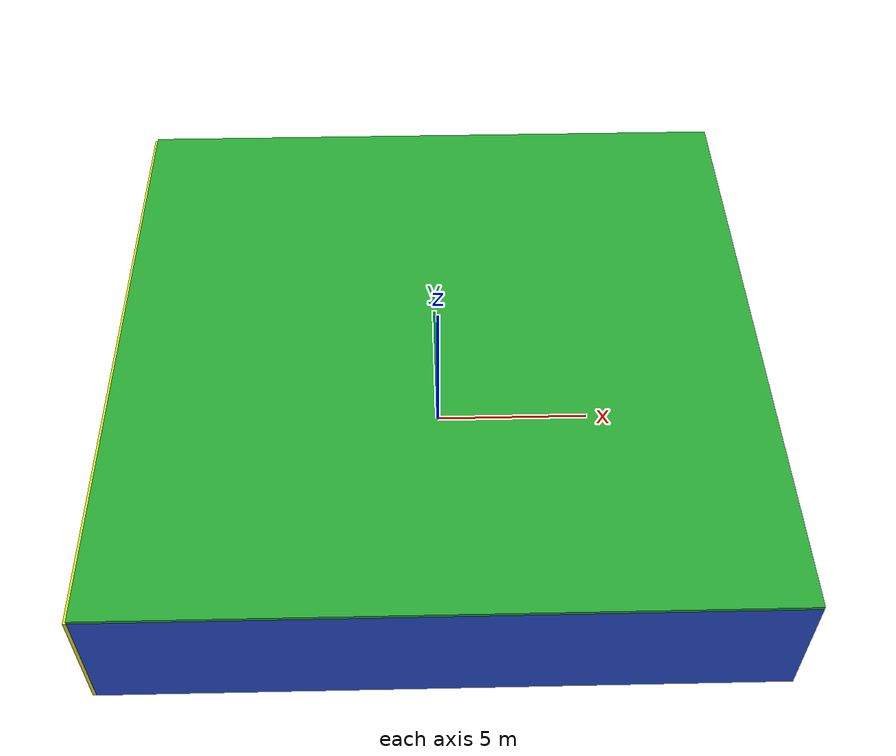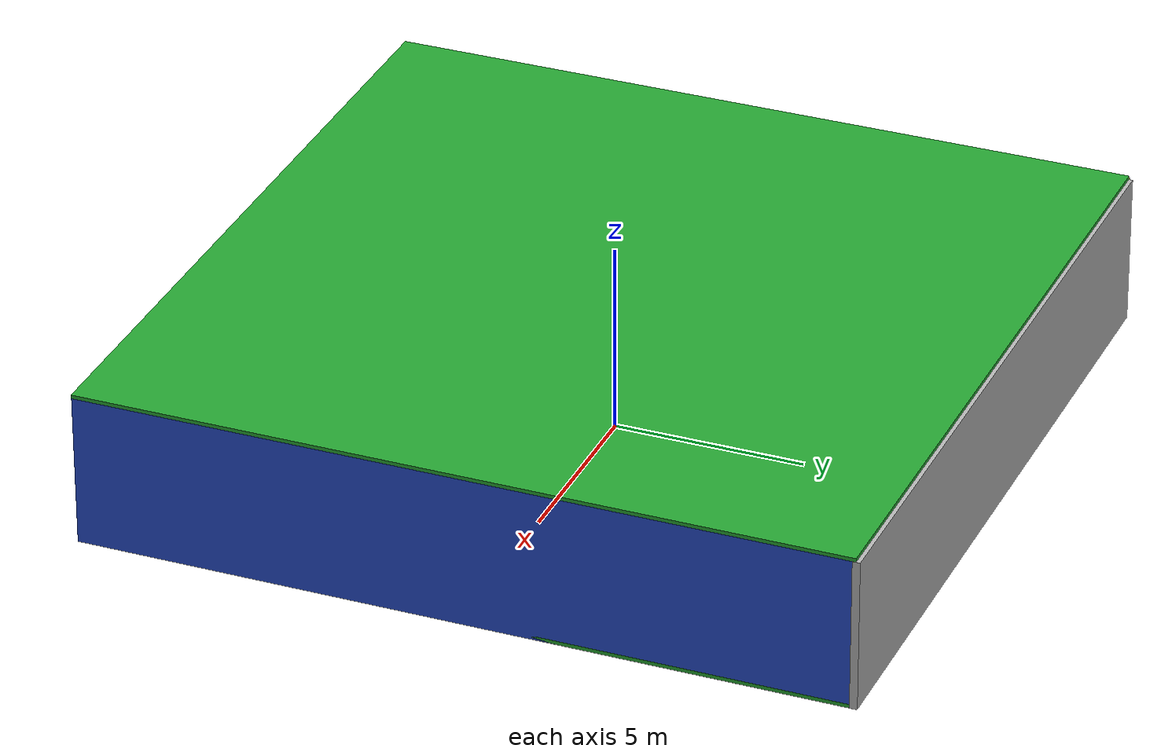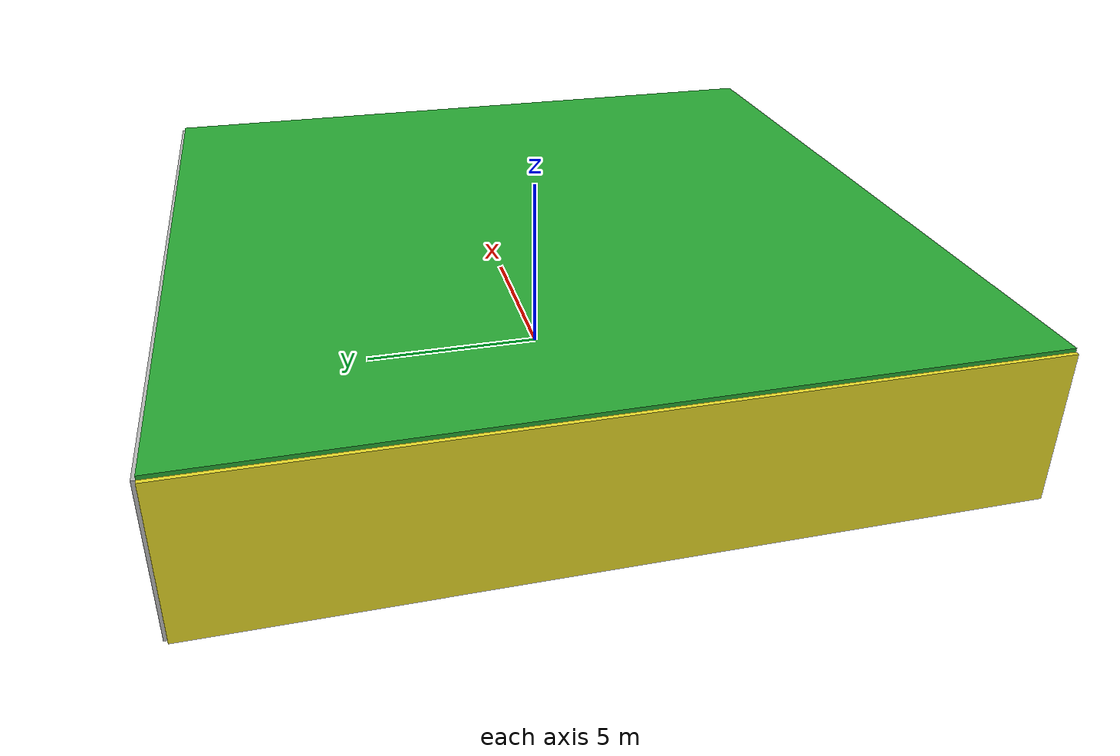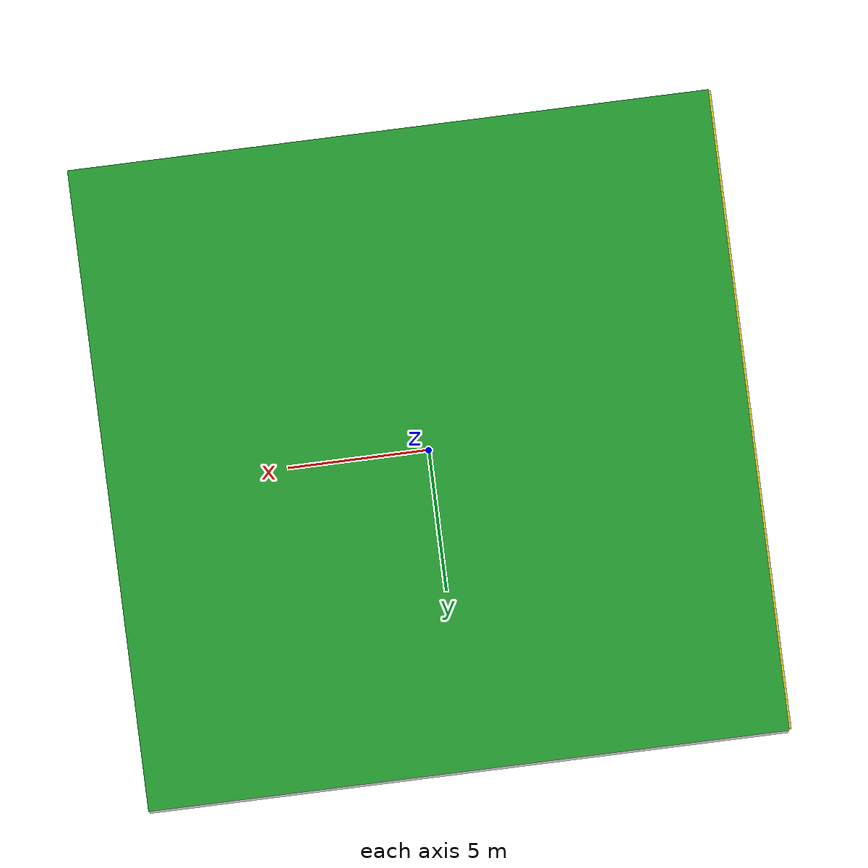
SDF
<sdf version="1.4">
 <world name="default">
  <physics type="ode">
   <max_step_size>0.001</max_step_size>
   <real_time_factor>1</real_time_factor>
   <real_time_update_rate>1000</real_time_update_rate>
   <gravity>0 0 -9.8</gravity>
  </physics>
  <scene><ambient>0.4 0.4 0.4 1</ambient><background>0.7 0.7 0.7 1</background><shadows>1</shadows></scene>
  <model name="Surrounding">
   <static>1</static>
   <link name="Ceiling">
    <collision name="Ceiling_Collision"><geometry><box><size>20 20 0.1</size></box></geometry></collision>
    <visual name="Ceiling_Visual">
     <geometry><box><size>20 20 0.1</size></box></geometry>
     <material>
      <script><uri>file://media/materials/scripts/gazebo.material</uri><name>Gazebo/GreenGlow</name></script>
     </material>
    </visual>
    <pose>0 0 4.05 0 0 0</pose>
   </link>
   <link name="Wall_South">
    <collision name="Wall_South_Collision">
     <geometry><box><size>20 0 4</size></box></geometry>
     <pose>0 0 2 0 -0 0</pose>
    </collision>
    <visual name="Wall_South_Visual">
     <pose>0 0 2 0 -0 0</pose>
     <geometry><box><size>20 0 4</size></box></geometry>
     <material>
      <script><uri>file://media/materials/scripts/gazebo.material</uri><name>Gazebo/Blue</name></script>
     </material>
    </visual>
    <velocity_decay><linear>0</linear><angular>0</angular></velocity_decay>
    <pose>0 -10 0 0 -0 0</pose>
   </link>
   <link name="Wall_East">
    <collision name="Wall_21_Collision">
     <geometry><box><size>20 0 4</size></box></geometry>
     <pose>0 0 2 0 -0 0</pose>
    </collision>
    <visual name="Wall_21_Visual">
     <pose>0 0 2 0 -0 0</pose>
     <geometry><box><size>20 0 4</size></box></geometry>
     <material>
      <script><uri>file://media/materials/scripts/gazebo.material</uri><name>Gazebo/Blue</name></script>
     </material>
    </visual>
    <velocity_decay><linear>0</linear><angular>0</angular></velocity_decay>
    <pose>10 0 0 0 -0 1.5708</pose>
   </link>
   <link name="Wall_North">
    <collision name="Wall_22_Collision">
     <geometry><box><size>20 0.2 4</size></box></geometry>
     <pose>0 0 2 0 -0 0</pose>
    </collision>
    <visual name="Wall_22_Visual">
     <pose>0 0 2 0 -0 0</pose>
     <geometry><box><size>20 0.2 4</size></box></geometry>
     <material>
      <script><uri>file://media/materials/scripts/gazebo.material</uri><name>Gazebo/JointAnchor</name></script>
     </material>
    </visual>
    <velocity_decay><linear>0</linear><angular>0</angular></velocity_decay>
    <pose>0 10 0 0 -0 0</pose>
   </link>
   <link name="Wall_West">
    <collision name="Wall_23_Collision">
     <geometry><box><size>20 0.2 4</size></box></geometry>
     <pose>0 0 2 0 -0 0</pose>
    </collision>
    <visual name="Wall_23_Visual">
     <pose>0 0 2 0 -0 0</pose>
     <geometry><box><size>20 0.2 4</size></box></geometry>
     <material>
      <script><uri>file://media/materials/scripts/gazebo.material</uri><name>Gazebo/YellowGlow</name></script>
     </material>
    </visual>
    <velocity_decay><linear>0</linear><angular>0</angular></velocity_decay>
    <pose>-10 0 0 0 0 -1.5708</pose>
   </link>
   <link name="Ground_link">
    <collision name="collision">
     <pose>0 0 .05 0 -0 0</pose>
     <geometry><box><size>20 20 0.1</size></box></geometry>
    </collision>
    <visual name="visual">
     <pose>0 0 .05 0 -0 0</pose>
     <geometry><box><size>20 20 0.1</size></box></geometry>
     <material>
      <script><uri>file://media/materials/scripts/gazebo.material</uri><name>Gazebo/GreenGlow</name></script>
     </material>
    </visual>
   </link>
   <static>1</static>
  </model>
  <spherical_coordinates>
   <surface_model>EARTH_WGS84</surface_model>
   <latitude_deg>0</latitude_deg>
   <longitude_deg>0</longitude_deg>
   <elevation>0</elevation>
   <heading_deg>0</heading_deg>
  </spherical_coordinates>
  <light name="lightball_0" type="diffuse">
   <diffuse>0.8 0.8 0.8 1</diffuse>
   <specular>0.2 0.2 0.2 1</specular>
   <attenuation>
    <range>100</range>
    <constant>0.7</constant>
    <linear>0.01</linear>
    <quadratic>0.001</quadratic>
   </attenuation>
   <direction>-0.5 0.1 -0.9</direction>
   <pose>-9.6937707711 -5.95800991294 3.45926962966 0 0 0</pose>
  </light>
  <light name="lightball_1" type="diffuse">
   <diffuse>0.8 0.8 0.8 1</diffuse>
   <specular>0.2 0.2 0.2 1</specular>
   <attenuation>
    <range>100</range>
    <constant>0.7</constant>
    <linear>0.01</linear>
    <quadratic>0.001</quadratic>
   </attenuation>
   <direction>-0.5 0.1 -0.9</direction>
   <pose>-8.50821107886 -9.05016101778 1.01721475214 0 0 0</pose>
  </light>
  <include><uri>model://cabinet</uri><pose>-4.85995619182 0.868823099013 0 0 0 2.6758769077</pose></include>
  <include>
   <uri>model://textured_shapes</uri>
   <pose>2.00591269187 1.27301632414 0 0 0 2.21682381519</pose>
  </include>
  <include>
   <uri>model://construction_cone</uri>
   <pose>2.17739177575 4.77354526751 0 0 0 0.837983926666</pose>
  </include>
  <include><uri>model://table</uri><pose>4.39146580339 -7.53130814411 0 0 0 2.68814684586</pose></include>
  <include>
   <uri>model://construction_cone</uri>
   <pose>3.83761680372 -4.37872411171 0 0 0 0.358292739174</pose>
  </include>
  <include><uri>model://cabinet</uri><pose>7.06912845522 -2.29668682775 0 0 0 2.94438275814</pose></include>
 </world>
</sdf>

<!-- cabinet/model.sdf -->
<sdf version="1.5">
  <model name="cabinet">
    <static>true</static>
    <link name="cabinet_bottom_plate">
      <inertial>
        <pose>0 0 -1 0 0 0</pose>
        <inertia>
          <ixx>2.050000</ixx>
          <ixy>0</ixy>
          <ixz>0</ixz>
          <iyy>2.050000</iyy>
          <iyz>0</iyz>
          <izz>2.050000</izz>
        </inertia>
        <mass>25.000000</mass>
      </inertial>
      <collision name="cabinet_bottom_plate_geom">
        <pose>0 0 0.010000 0 0 0</pose>
        <geometry>
          <box>
            <size>0.450000 0.450000 0.020000</size>
          </box>
        </geometry>
      </collision>
      <visual name="cabinet_bottom_plate_geom_visual">
        <pose>0 0 0.010000 0 0 0</pose>
        <geometry>
          <box>
            <size>0.450000 0.450000 0.020000</size>
          </box>
        </geometry>
        <material>
          <script>
            <uri>model://media/materials/scripts/gazebo.material</uri>
            <name>Gazebo/Wood</name>
          </script>
        </material>
      </visual>
      <collision name="cabinet_bottom_plate_geom_cabinet_back_plate">
        <pose>0.235000 0 0.510000 0 0 0</pose>
        <geometry>
          <box>
            <size>0.020000 0.450000 1.020000</size>
          </box>
        </geometry>
      </collision>
      <visual name="cabinet_bottom_plate_geom_cabinet_back_plate_visual">
        <pose>0.235000 0 0.510000 0 0 0</pose>
        <geometry>
          <box>
            <size>0.020000 0.450000 1.020000</size>
          </box>
        </geometry>
        <material>
          <script>
            <uri>model://media/materials/scripts/gazebo.material</uri>
            <name>Gazebo/Wood</name>
          </script>
        </material>
      </visual>
      <collision name="cabinet_bottom_plate_geom_cabinet_left_plate">
        <pose>0 0.235000 0.510000 0 0 0</pose>
        <geometry>
          <box>
            <size>0.450000 0.020000 1.020000</size>
          </box>
        </geometry>
      </collision>
      <visual name="cabinet_bottom_plate_geom_cabinet_left_plate_visual">
        <pose>0 0.235000 0.510000 0 0 0</pose>
        <geometry>
          <box>
            <size>0.450000 0.020000 1.020000</size>
          </box>
        </geometry>
        <material>
          <script>
            <uri>model://media/materials/scripts/gazebo.material</uri>
            <name>Gazebo/Wood</name>
          </script>
        </material>
      </visual>
      <collision name="cabinet_bottom_plate_geom_cabinet_middle_plate">
        <pose>0 0 0.510000 0 0 0</pose>
        <geometry>
          <box>
            <size>0.450000 0.450000 0.020000</size>
          </box>
        </geometry>
      </collision>
      <visual name="cabinet_bottom_plate_geom_cabinet_middle_plate_visual">
        <pose>0 0 0.510000 0 0 0</pose>
        <geometry>
          <box>
            <size>0.450000 0.450000 0.020000</size>
          </box>
        </geometry>
        <material>
          <script>
            <uri>model://media/materials/scripts/gazebo.material</uri>
            <name>Gazebo/Wood</name>
          </script>
        </material>
      </visual>
      <collision name="cabinet_bottom_plate_geom_cabinet_right_plate">
        <pose>0 -0.235000 0.510000 0 0 0</pose>
        <geometry>
          <box>
            <size>0.450000 0.020000 1.020000</size>
          </box>
        </geometry>
      </collision>
      <visual name="cabinet_bottom_plate_geom_cabinet_right_plate_visual">
        <pose>0 -0.235000 0.510000 0 0 0</pose>
        <geometry>
          <box>
            <size>0.450000 0.020000 1.020000</size>
          </box>
        </geometry>
        <material>
          <script>
            <uri>model://media/materials/scripts/gazebo.material</uri>
            <name>Gazebo/Wood</name>
          </script>
        </material>
      </visual>
      <collision name="cabinet_bottom_plate_geom_cabinet_top_plate">
        <pose>0 0 1.010000 0 0 0</pose>
        <geometry>
          <box>
            <size>0.450000 0.450000 0.020000</size>
          </box>
        </geometry>
      </collision>
      <visual name="cabinet_bottom_plate_geom_cabinet_top_plate_visual">
        <pose>0 0 1.010000 0 0 0</pose>
        <geometry>
          <box>
            <size>0.450000 0.450000 0.020000</size>
          </box>
        </geometry>
        <material>
          <script>
            <uri>model://media/materials/scripts/gazebo.material</uri>
            <name>Gazebo/Wood</name>
          </script>
        </material>
      </visual>
    </link>
  </model>
</sdf>

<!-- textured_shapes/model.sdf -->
<sdf version="1.6">
  <model name="textured_shapes">
    <pose>0 0 0.5 0 0 0</pose>
    <link name="box">
      <pose>0 -1.5 0 0 0 0</pose>
      <collision name="collision">
        <geometry>
          <box>
            <size>1 1 1</size>
          </box>
        </geometry>
      </collision>
      <visual name="visual">
        <geometry>
          <box>
            <size>1 1 1</size>
          </box>
        </geometry>
        <material>
          <script>
            <uri>model://../model_source/models/textured_shapes/materials/scripts</uri>
            <uri>model://../model_source/models/textured_shapes/materials/textures</uri>
            <name>TexturedShape/Squares</name>
          </script>
        </material>
      </visual>
    </link>
    <link name="sphere">
      <collision name="collision">
        <geometry>
          <sphere>
            <radius>0.5</radius>
          </sphere>
        </geometry>
      </collision>
      <visual name="visual">
        <geometry>
          <sphere>
            <radius>0.5</radius>
          </sphere>
        </geometry>
        <material>
          <script>
            <uri>model://../model_source/models/textured_shapes/materials/scripts</uri>
            <uri>model://../model_source/models/textured_shapes/materials/textures</uri>
            <name>TexturedShape/Squares</name>
          </script>
        </material>
      </visual>
    </link>
    <link name="cylinder">
      <pose>0 1.5 0 0 0 0</pose>
      <collision name="collision">
        <geometry>
          <cylinder>
            <radius>0.5</radius>
            <length>1</length>
          </cylinder>
        </geometry>
      </collision>
      <visual name="visual">
        <geometry>
          <cylinder>
            <radius>0.5</radius>
            <length>1</length>
          </cylinder>
        </geometry>
        <material>
          <script>
            <uri>model://../model_source/models/textured_shapes/materials/scripts</uri>
            <uri>model://../model_source/models/textured_shapes/materials/textures</uri>
            <name>TexturedShape/Squares</name>
          </script>
        </material>
      </visual>
    </link>
  </model>
</sdf>

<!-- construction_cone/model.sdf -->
<sdf version="1.5">
  <model name="Construction Cone">
    <link name="link">
      <collision name="collision">
        <geometry>
          <mesh>
            <scale>10 10 10</scale>
            <uri>file://isr-testbed/construction_cone/meshes/construction_cone.dae</uri>
          </mesh>
        </geometry>
      </collision>
      <visual name="visual">
        <geometry>
          <mesh>
            <scale>10 10 10</scale>
            <uri>file://isr-testbed/construction_cone/meshes/construction_cone.dae</uri>
          </mesh>
        </geometry>
      </visual>
    </link>
  </model>
</sdf>

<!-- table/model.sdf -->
<sdf version="1.5">
  <model name="table">
    <static>true</static>
    <link name="link">
      <collision name="surface">
        <pose>0 0 1.0 0 0 0</pose>
        <geometry>
          <box>
            <size>1.5 0.8 0.03</size>
          </box>
        </geometry>
        <surface>
          <friction>
            <ode>
              <mu>0.6</mu>
              <mu2>0.6</mu2>
            </ode>
          </friction>
        </surface>
      </collision>
      <visual name="visual1">
        <pose>0 0 1.0 0 0 0</pose>
        <geometry>
          <box>
            <size>1.5 0.8 0.03</size>
          </box>
        </geometry>
        <material>
          <script>
            <uri>model://media/materials/scripts/gazebo.material</uri>
            <name>Gazebo/Wood</name>
          </script>
        </material>
      </visual>
      <collision name="front_left_leg">
        <pose>0.68 0.38 0.5 0 0 0</pose>
        <geometry>
          <cylinder>
            <radius>0.02</radius>
            <length>1.0</length>
          </cylinder>
        </geometry>
      </collision>
      <visual name="front_left_leg">
        <pose>0.68 0.38 0.5 0 0 0</pose>
        <geometry>
          <cylinder>
            <radius>0.02</radius>
            <length>1.0</length>
          </cylinder>
        </geometry>
        <material>
          <script>
            <uri>model://media/materials/scripts/gazebo.material</uri>
            <name>Gazebo/Grey</name>
          </script>
        </material>
      </visual>
      <collision name="front_right_leg">
        <pose>0.68 -0.38 0.5 0 0 0</pose>
        <geometry>
          <cylinder>
            <radius>0.02</radius>
            <length>1.0</length>
          </cylinder>
        </geometry>
      </collision>
      <visual name="front_right_leg">
        <pose>0.68 -0.38 0.5 0 0 0</pose>
        <geometry>
          <cylinder>
            <radius>0.02</radius>
            <length>1.0</length>
          </cylinder>
        </geometry>
        <material>
          <script>
            <uri>model://media/materials/scripts/gazebo.material</uri>
            <name>Gazebo/Grey</name>
          </script>
        </material>
      </visual>
      <collision name="back_right_leg">
        <pose>-0.68 -0.38 0.5 0 0 0</pose>
        <geometry>
          <cylinder>
            <radius>0.02</radius>
            <length>1.0</length>
          </cylinder>
        </geometry>
      </collision>
      <visual name="back_right_leg">
        <pose>-0.68 -0.38 0.5 0 0 0</pose>
        <geometry>
          <cylinder>
            <radius>0.02</radius>
            <length>1.0</length>
          </cylinder>
        </geometry>
        <material>
          <script>
            <uri>model://media/materials/scripts/gazebo.material</uri>
            <name>Gazebo/Grey</name>
          </script>
        </material>
      </visual>
      <collision name="back_left_leg">
        <pose>-0.68 0.38 0.5 0 0 0</pose>
        <geometry>
          <cylinder>
            <radius>0.02</radius>
            <length>1.0</length>
          </cylinder>
        </geometry>
      </collision>
      <visual name="back_left_leg">
        <pose>-0.68 0.38 0.5 0 0 0</pose>
        <geometry>
          <cylinder>
            <radius>0.02</radius>
            <length>1.0</length>
          </cylinder>
        </geometry>
        <material>
          <script>
            <uri>model://media/materials/scripts/gazebo.material</uri>
            <name>Gazebo/Grey</name>
          </script>
        </material>
      </visual>
    </link>
  </model>
</sdf>
